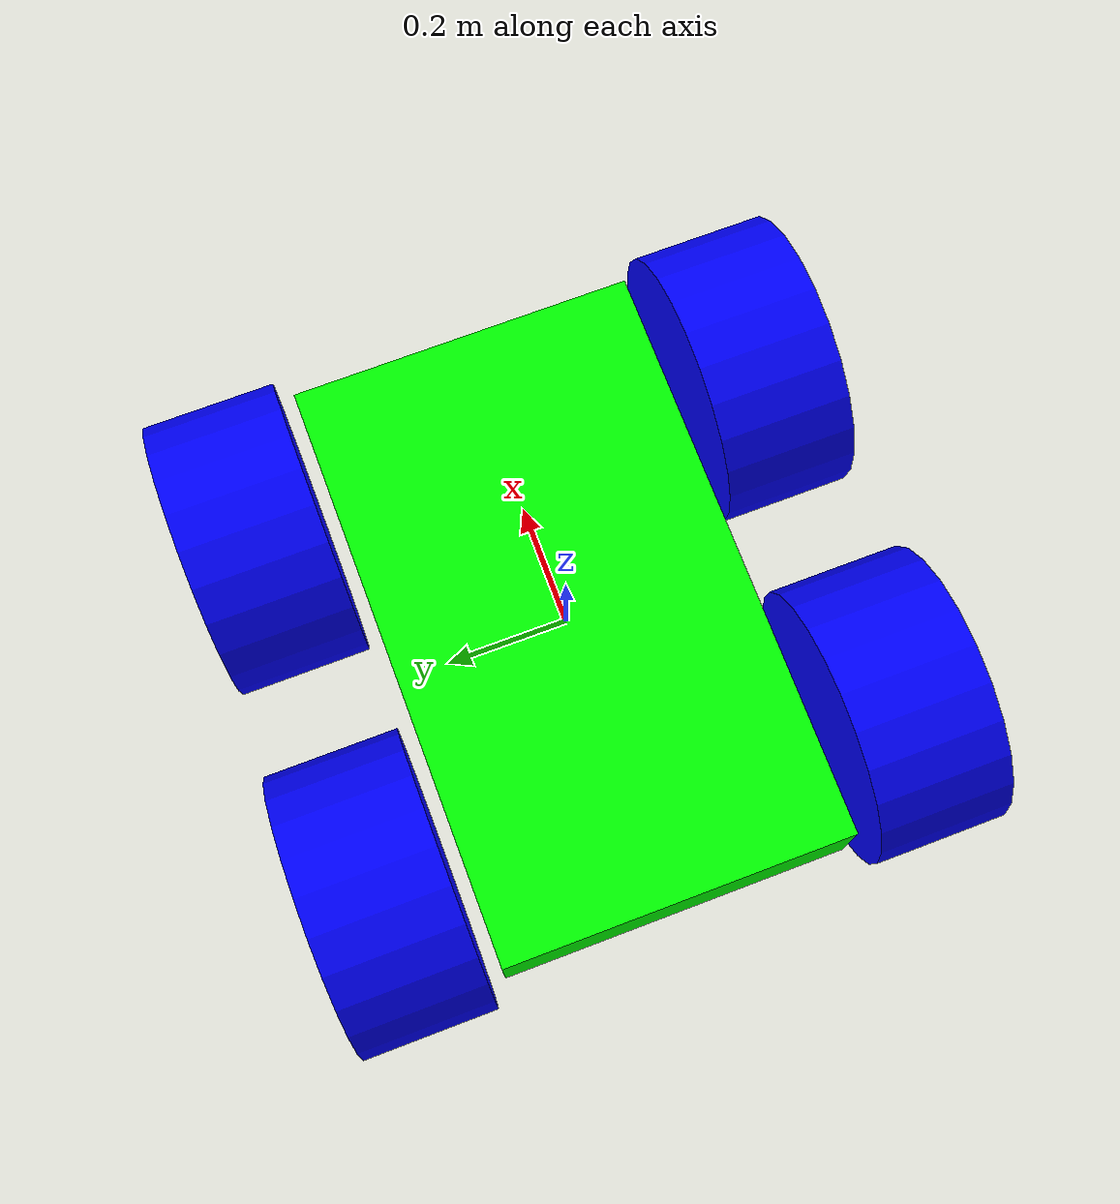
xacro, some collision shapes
<?xml version="1.0"?>
<robot xmlns:xacro="http://ros.org/wiki/xacro" name="greenguardian">
    <!-- paramters to be set from the launch file -->
    <xacro:arg name="prefix" default="" />

    <!-- Robot Base -->
    <xacro:include filename="$(find bot_description)/description/robot_base.xacro"/>
    <xacro:bot_base prefix="$(arg prefix)"/>

    <!-- LIDAR -->
    <xacro:include filename="VLP-16.urdf.xacro"/>
        <xacro:VLP-16 parent="base_link" name="velodyne" topic="/scan"  hz="10" samples="440" >
        <origin xyz="0.43 0 0.1" rpy="0 0 0" />
    </xacro:VLP-16>

</robot>

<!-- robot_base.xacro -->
<robot xmlns:xacro="http://ros.org/wiki/xacro">
  <!-- Args -->
  <xacro:arg name="robot_namespace" default="/" />

  <!-- Constants -->
  <xacro:property name="M_PI" value="3.14159"/>

  <!-- Included URDF/XACRO Files -->
  <xacro:include filename="$(find bot_description)/description/wheel.xacro" />
  <xacro:include filename="$(find bot_description)/description/material_macros.xacro" />

  <xacro:macro name="bot_base" params="prefix">

    <!-- Base Size -->
    <xacro:property name="base_x_size" value="0.97536" />
    <xacro:property name="base_y_size" value="0.5715" />
    <xacro:property name="base_z_size" value="0.16129" />

    <!-- Wheel Mounting Positions -->
    <xacro:property name="wheelbase" value="0.6096" />             <!-- the distance between the front and rear axles -->
    <xacro:property name="track" value="0.8382" />                 <!-- the distance between the left and right wheels -->
    <xacro:property name="wheel_vertical_offset" value="0.0" />

    <!-- Wheel Properties -->
    <xacro:property name="wheel_length" value="0.2159" />
    <xacro:property name="wheel_radius" value="0.2286" />

    <!-- Base link is the center of the robot's bottom plate -->
    <link name="${prefix}base_link">
      <visual>
        <origin xyz="0 0 0" rpy="0 0 0" />
        <geometry>
          <box size="${base_x_size} ${base_y_size} ${base_z_size}"/>
        </geometry>
        <material name="green"/>
      </visual>
      <collision>
        <origin xyz="0 0 0" rpy="0 0 0" />
        <geometry>
          <box size="${base_x_size} ${base_y_size} ${base_z_size}"/>
        </geometry>
      </collision>
    </link>

    <!-- Base footprint is on the ground under the robot -->
    <link name="${prefix}base_footprint"/>

    <joint name="${prefix}base_footprint_joint" type="fixed">
      <origin xyz="0 0 ${wheel_vertical_offset - wheel_radius}" rpy="0 0 0" />
      <parent link="${prefix}base_link" />
      <child link="${prefix}base_footprint" />
    </joint>

    <!-- Inertial link stores the robot's inertial information -->
    <link name="${prefix}inertial_link">
      <inertial>
        <mass value="46.034" />
        <origin xyz="-0.00065 -0.085 0.062" />
        <inertia ixx="0.6022" ixy="-0.02364" ixz="-0.1197" iyy="1.7386" iyz="-0.001544" izz="2.0296" />
      </inertial>
    </link>

    <joint name="${prefix}inertial_joint" type="fixed">
      <origin xyz="0 0 0" rpy="0 0 0" />
      <parent link="${prefix}base_link" />
      <child link="${prefix}inertial_link" />
    </joint>

    <!-- Robot wheel macros -->
    <xacro:bot_wheel wheel_prefix="${prefix}front_left">
      <origin xyz="${wheelbase/2} ${track/2} ${wheel_vertical_offset}" rpy="0 0 0" />
    </xacro:bot_wheel>
    <xacro:bot_wheel wheel_prefix="${prefix}front_right">
      <origin xyz="${wheelbase/2} ${-track/2} ${wheel_vertical_offset}" rpy="0 0 0" />
    </xacro:bot_wheel>
    <xacro:bot_wheel wheel_prefix="${prefix}rear_left">
      <origin xyz="${-wheelbase/2} ${track/2} ${wheel_vertical_offset}" rpy="0 0 0" />
    </xacro:bot_wheel>
    <xacro:bot_wheel wheel_prefix="${prefix}rear_right">
      <origin xyz="${-wheelbase/2} ${-track/2} ${wheel_vertical_offset}" rpy="0 0 0" />
    </xacro:bot_wheel>

  </xacro:macro>

</robot>

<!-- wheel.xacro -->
<robot xmlns:xacro="http://ros.org/wiki/xacro">
  <xacro:macro name="bot_wheel" params="wheel_prefix *joint_pose">
    <link name="${wheel_prefix}_wheel">
      <inertial>
        <mass value="2.637" />
        <origin xyz="0 0 0" />
        <inertia  ixx="0.02467" ixy="0" ixz="0" iyy="0.04411" iyz="0" izz="0.02467" />
      </inertial>
      <visual>
        <origin xyz="0 0 0" rpy="${M_PI/2} 0 0" />
        <geometry>
          <cylinder length="${wheel_length}" radius="${wheel_radius}" />
        </geometry>
        <material name="blue"/>
      </visual>
      <collision>
        <origin xyz="0 0 0" rpy="${M_PI/2} 0 0" />
        <geometry>
          <cylinder length="${wheel_length}" radius="${wheel_radius}" />
        </geometry>
      </collision>
    </link>

    <gazebo reference="${wheel_prefix}_wheel">
      <mu1 value="1.0"/>
      <mu2 value="0.5"/>
      <kp value="10000000.0" />
      <kd value="1.0" />
      <fdir1 value="1 0 0"/>
    </gazebo>

    <joint name="${wheel_prefix}_wheel_joint" type="continuous">
      <parent link="base_link"/>
      <child link="${wheel_prefix}_wheel"/>
      <xacro:insert_block name="joint_pose"/>
      <axis xyz="0 1 0" rpy="0 0 0" />
    </joint>

  </xacro:macro>
</robot>

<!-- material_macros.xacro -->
<robot xmlns:xacro="http://www.ros.org/wiki/xacro" >
    <material name="black">
        <color rgba="0 0 0 1"/>
    </material>

    <material name="grey">
        <color rgba="0.5 0.5 0.5 1"/>
    </material>

    <material name="white">
        <color rgba="1 1 1 1"/>
    </material>

    <material name="red">
        <color rgba="1 0 0 1"/>
    </material>

    <material name="green">
        <color rgba="0 1 0 1"/>
    </material>

    <material name="blue">
        <color rgba="0 0 1 1"/>
    </material>

</robot>

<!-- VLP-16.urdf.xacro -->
<robot xmlns:xacro="http://www.ros.org/wiki/xacro" name="VLP-16">
  <xacro:property name="M_PI" value="3.1415926535897931" />
  <xacro:macro name="VLP-16" params="*origin parent:=base_link name:=velodyne topic:=/scan organize_cloud:=false hz:=10 lasers:=16 samples:=1875 collision_range:=0.3 min_range:=0.9 max_range:=130.0 noise:=0.008 min_angle:=-${M_PI} max_angle:=${M_PI} gpu:=false">

    <joint name="${name}_base_mount_joint" type="fixed">
      <xacro:insert_block name="origin" />
      <parent link="${parent}"/>
      <child link="${name}"/>
      <axis xyz="0 1 0" />
    </joint>

    <link name="${name}">
      <inertial>
        <mass value="0.01"/>
        <origin xyz="0 0 0"/>
        <inertia ixx="1e-7" ixy="0" ixz="0" iyy="1e-7" iyz="0" izz="1e-7"/>
      </inertial>
      <visual>
        <origin xyz="0 0 -0.0377" />
        <geometry>
          <mesh filename="package://bot_description/description/meshes/VLP16_scan.dae" />
        </geometry>
      </visual>
      <collision>
        <geometry>
          <sphere radius="0"/>
        </geometry>
      </collision>
    </link>

    <!-- Gazebo requires the velodyne_gazebo_plugins package -->
    <gazebo reference="${name}">
      <xacro:if value="${gpu}">
        <sensor type="gpu_ray" name="${name}-VLP16">
          <pose>0 0 0 0 0 0</pose>
          <visualize>false</visualize>
          <update_rate>${hz}</update_rate>
          <ray>
            <scan>
              <horizontal>
                <samples>${samples}</samples>
                <resolution>1</resolution>
                <min_angle>${min_angle}</min_angle>
                <max_angle>${max_angle}</max_angle>
              </horizontal>
              <vertical>
                <samples>${lasers}</samples>
                <resolution>1</resolution>
                <min_angle>-${15.0*M_PI/180.0}</min_angle>
                <max_angle> ${15.0*M_PI/180.0}</max_angle>
              </vertical>
            </scan>
            <range>
              <min>${collision_range}</min>
              <max>${max_range+1}</max>
              <resolution>0.001</resolution>
            </range>
            <noise>
              <type>gaussian</type>
              <mean>0.0</mean>
              <stddev>0.0</stddev>
            </noise>
          </ray>
          <plugin name="gazebo_ros_laser_controller" filename="libgazebo_ros_velodyne_gpu_laser.so">
            <topicName>${topic}</topicName>
            <frameName>${name}</frameName>
            <organize_cloud>${organize_cloud}</organize_cloud>
            <min_range>${min_range}</min_range>
            <max_range>${max_range}</max_range>
            <gaussianNoise>${noise}</gaussianNoise>
          </plugin>
        </sensor>
      </xacro:if>
      <xacro:unless value="${gpu}">
        <sensor type="ray" name="${name}-VLP16">
          <pose>0 0 0 0 0 0</pose>
          <visualize>false</visualize>
          <update_rate>${hz}</update_rate>
          <ray>
            <scan>
              <horizontal>
                <samples>${samples}</samples>
                <resolution>1</resolution>
                <min_angle>${min_angle}</min_angle>
                <max_angle>${max_angle}</max_angle>
              </horizontal>
              <vertical>
                <samples>${lasers}</samples>
                <resolution>1</resolution>
                <min_angle>-${15.0*M_PI/180.0}</min_angle>
                <max_angle> ${15.0*M_PI/180.0}</max_angle>
              </vertical>
            </scan>
            <range>
              <min>${collision_range}</min>
              <max>${max_range+1}</max>
              <resolution>0.001</resolution>
            </range>
            <noise>
              <type>gaussian</type>
              <mean>0.0</mean>
              <stddev>0.0</stddev>
            </noise>
          </ray>
          <plugin name="gazebo_ros_laser_controller" filename="libgazebo_ros_velodyne_laser.so">
            <topicName>${topic}</topicName>
            <frameName>${name}</frameName>
            <organize_cloud>${organize_cloud}</organize_cloud>
            <min_range>${min_range}</min_range>
            <max_range>${max_range}</max_range>
            <gaussianNoise>${noise}</gaussianNoise>
          </plugin>
        </sensor>
      </xacro:unless>
    </gazebo>

  </xacro:macro>
</robot>
